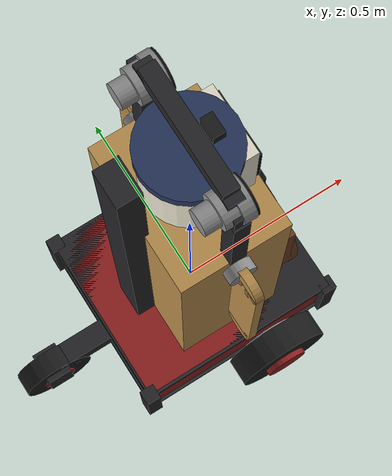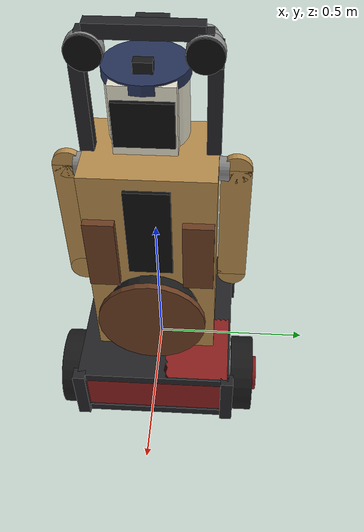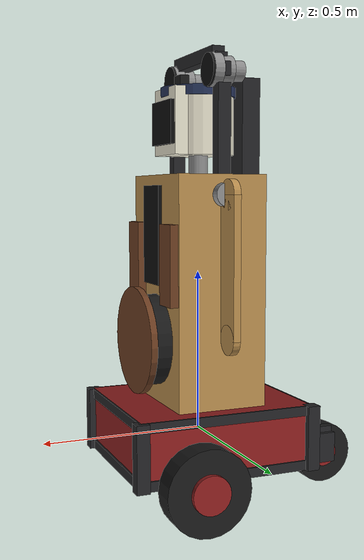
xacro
<?xml version="1.0"?>
<robot xmlns:xacro="http://www.ros.org/wiki/xacro" name="dadou_robot">

  <xacro:include filename="dadou_robot.urdf.xacro"/>

  <gazebo reference="body_leds_joint">
    <preserveFixedJoint>true</preserveFixedJoint>
  </gazebo>
  <gazebo reference="mouth_leds_joint">
    <preserveFixedJoint>true</preserveFixedJoint>
  </gazebo>
  <gazebo reference="left_eye_leds_joint">
    <preserveFixedJoint>true</preserveFixedJoint>
  </gazebo>
  <gazebo reference="right_eye_leds_joint">
    <preserveFixedJoint>true</preserveFixedJoint>
  </gazebo>

  <link name="camera_link">
    <visual>
      <geometry><box size="0.03 0.05 0.03"/></geometry>
      <material name="black"/>
    </visual>
    <xacro:box_inertial m="0.05" x="0.03" y="0.05" z="0.03"/>
  </link>
  <joint name="camera_joint" type="fixed">
    <parent link="head_link"/>
    <child link="camera_link"/>
    <origin xyz="${head_radius/2} 0 ${head_height + 0.025}"/>
  </joint>
  <gazebo reference="camera_joint">
    <preserveFixedJoint>true</preserveFixedJoint>
  </gazebo>

  <gazebo reference="camera_link">
    <sensor name="camera" type="camera">
      <camera>
        <horizontal_fov>1.047</horizontal_fov>
        <image>
          <width>640</width>
          <height>480</height>
          <format>R8G8B8</format>
        </image>
        <clip>
          <near>0.1</near>
          <far>100.0</far>
        </clip>
      </camera>
      <always_on>1</always_on>
      <update_rate>15</update_rate>
      <topic>camera/image_raw</topic>
    </sensor>
  </gazebo>

  <!-- Roue folle : elle est modélisée en sphère fixe, elle doit glisser. -->
  <gazebo reference="caster_rear_link">
    <mu1>0.05</mu1>
    <mu2>0.05</mu2>
  </gazebo>

  <!-- Pneus : bonne adhérence pour que le différentiel morde. -->
  <gazebo reference="wheel_left_link">
    <mu1>1.2</mu1>
    <mu2>1.0</mu2>
  </gazebo>
  <gazebo reference="wheel_right_link">
    <mu1>1.2</mu1>
    <mu2>1.0</mu2>
  </gazebo>

  <gazebo>
    <!-- Base différentielle : mêmes wheel_separation/wheel_radius que
         robot/move/diff_drive.py (propriétés xacro partagées). -->
    <plugin filename="gz-sim-diff-drive-system" name="gz::sim::systems::DiffDrive">
      <left_joint>wheel_left_joint</left_joint>
      <right_joint>wheel_right_joint</right_joint>
      <wheel_separation>${wheel_separation}</wheel_separation>
      <wheel_radius>${wheel_radius}</wheel_radius>
      <topic>/cmd_vel</topic>
      <odom_topic>/odom</odom_topic>
      <tf_topic>/tf_gz</tf_topic>
      <frame_id>odom</frame_id>
      <child_frame_id>base_link</child_frame_id>
      <odom_publish_frequency>30</odom_publish_frequency>
      <!-- Un robot de 50 kg au milieu d'acteurs n'accélère pas comme un jouet. -->
      <max_linear_acceleration>1.0</max_linear_acceleration>
      <max_angular_acceleration>2.0</max_angular_acceleration>
    </plugin>

    <plugin filename="gz-sim-joint-state-publisher-system" name="gz::sim::systems::JointStatePublisher">
      <topic>/joint_states</topic>
    </plugin>

    <!-- Servos : un contrôleur en position par joint, piloté en vitesse
         (use_velocity_commands : stable sans réglage de PID). -->
    <xacro:macro name="servo_controller" params="joint">
      <plugin filename="gz-sim-joint-position-controller-system" name="gz::sim::systems::JointPositionController">
        <joint_name>${joint}</joint_name>
        <topic>/${joint}/position</topic>
        <use_velocity_commands>true</use_velocity_commands>
      </plugin>
    </xacro:macro>
    <xacro:servo_controller joint="neck"/>
    <xacro:servo_controller joint="left_arm"/>
    <xacro:servo_controller joint="right_arm"/>
    <xacro:servo_controller joint="left_eye"/>
    <xacro:servo_controller joint="right_eye"/>
  </gazebo>

</robot>

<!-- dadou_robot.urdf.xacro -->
<robot xmlns:xacro="http://www.ros.org/wiki/xacro" name="dadou_robot">

  <!-- ======== Dimensions (mètres, kilogrammes) ======== -->
  <!-- GELÉ : base et roues alimentent la physique validée. Ne pas retoucher sans
       repasser le protocole caméra / la validation sim du suivi de personne. -->
  <xacro:property name="base_length" value="0.55"/>
  <xacro:property name="base_width" value="0.55"/>
  <xacro:property name="base_height" value="0.20"/>
  <xacro:property name="base_mass" value="35.0"/>
  <xacro:property name="base_vis_width" value="0.48"/>
  <xacro:property name="base_post" value="0.04"/>

  <xacro:property name="wheel_radius" value="0.13"/>
  <xacro:property name="wheel_width" value="0.075"/>
  <xacro:property name="wheel_separation" value="0.58"/>
  <xacro:property name="wheel_mass" value="1.5"/>

  <!-- Roue folle arrière sur flèche déportée -->
  <xacro:property name="caster_offset_x" value="-0.45"/>
  <xacro:property name="caster_radius" value="0.10"/>
  <xacro:property name="caster_width" value="0.06"/>

  <!-- Torse : colonne de planches, PLUS LARGE (y) QUE PROFONDE (x) — c'est net
       sur les photos de face vs de profil. -->
  <xacro:property name="torso_length" value="0.28"/>
  <xacro:property name="torso_width" value="0.38"/>
  <xacro:property name="torso_height" value="0.70"/>
  <xacro:property name="torso_mass" value="10.0"/>

  <!-- Tête = tambour clair sur l'arbre du cou (axe vertical) -->
  <xacro:property name="head_radius" value="0.11"/>
  <xacro:property name="head_height" value="0.20"/>
  <xacro:property name="head_mass" value="1.5"/>
  <!-- Façade plane du tambour (le vrai est un prisme hexagonal) : elle sert
       d'assise à la matrice LED du visage. -->
  <xacro:property name="head_face_width" value="0.17"/>
  <xacro:property name="head_face_depth" value="0.06"/>
  <!-- Arbre/roulement visible entre le haut du torse et le tambour (cf. mouth.jpg) -->
  <xacro:property name="neck_shaft_height" value="0.06"/>

  <!-- Bras : PALES DE BOIS PLATES (pas des tiges), pivotant aux épaules -->
  <xacro:property name="arm_length" value="0.42"/>
  <xacro:property name="arm_width" value="0.09"/>
  <xacro:property name="arm_thickness" value="0.022"/>
  <xacro:property name="arm_mass" value="0.8"/>

  <!-- Yeux : cloches (phares) au bout de l'arche. Le "rayon" sert d'échelle
       générale de la cloche ; l'inertie reste celle d'une sphère équivalente. -->
  <xacro:property name="eye_radius" value="0.05"/>
  <xacro:property name="eye_mass" value="0.12"/>
  <xacro:property name="eye_offset_y" value="0.15"/>
  <xacro:property name="eye_offset_z" value="0.30"/>

  <!-- Arche d'acier noir enjambant la tête, du haut du torse aux servos des yeux -->
  <xacro:property name="arch_section" value="0.04"/>
  <xacro:property name="arch_y" value="${torso_width/2 - 0.015}"/>

  <!-- Haut-parleur rond de la poitrine (la bouche SONORE, pas les LED) -->
  <xacro:property name="speaker_radius" value="0.14"/>
  <xacro:property name="speaker_z" value="${0.28*torso_height}"/>

  <!-- Grilles à lamelles ("ouïes") de part et d'autre du ruban LED -->
  <xacro:property name="gill_y" value="0.14"/>
  <xacro:property name="gill_z" value="${0.62*torso_height}"/>

  <!-- Ruban LED "corps" (zone 513-673) : bande verticale au CENTRE de la
       poitrine, entre les deux ouïes et au-dessus du haut-parleur. -->
  <xacro:property name="body_leds_height" value="0.30"/>
  <xacro:property name="body_leds_width" value="0.13"/>
  <xacro:property name="body_leds_thickness" value="0.012"/>
  <xacro:property name="body_leds_mass" value="0.05"/>
  <xacro:property name="body_leds_z" value="${0.74*torso_height}"/>

  <!-- Matrice LED "bouche" (LED 0-384) : plaque de façade de la TÊTE. Elle tourne
       donc avec le cou, comme sur le vrai robot. -->
  <xacro:property name="mouth_leds_width" value="0.16"/>
  <xacro:property name="mouth_leds_height" value="0.13"/>
  <xacro:property name="mouth_leds_thickness" value="0.012"/>
  <xacro:property name="mouth_leds_mass" value="0.05"/>

  <!-- Matrices LED des yeux (8x8) : disque en face avant de chaque cloche. -->
  <xacro:property name="eye_leds_radius" value="0.048"/>
  <xacro:property name="eye_leds_thickness" value="0.008"/>
  <xacro:property name="eye_leds_mass" value="0.02"/>

  <!-- Course des servos : 0..180° matériel, centrée dans le modèle -->
  <xacro:property name="servo_lower" value="${-pi/2}"/>
  <xacro:property name="servo_upper" value="${pi/2}"/>

  <material name="wood"><color rgba="0.72 0.55 0.30 1"/></material>
  <material name="wood_dark"><color rgba="0.42 0.24 0.13 1"/></material>
  <material name="red_metal"><color rgba="0.55 0.12 0.12 1"/></material>
  <material name="black"><color rgba="0.10 0.10 0.10 1"/></material>
  <material name="steel_black"><color rgba="0.14 0.14 0.15 1"/></material>
  <material name="grey"><color rgba="0.55 0.55 0.55 1"/></material>
  <material name="cream"><color rgba="0.90 0.88 0.80 1"/></material>
  <material name="blue_drum"><color rgba="0.15 0.20 0.35 1"/></material>
  <!-- LED éteintes par défaut (couleur réelle pilotée en runtime par leds_sim_node
       en sim, via matériaux émissifs gz ; sur le vrai robot ce sont des NeoPixel). -->
  <material name="leds_off"><color rgba="0.05 0.05 0.05 1"/></material>

  <!-- ======== Macros d'inertie ======== -->
  <xacro:macro name="box_inertial" params="m x y z">
    <inertial>
      <mass value="${m}"/>
      <inertia ixx="${m*(y*y+z*z)/12}" iyy="${m*(x*x+z*z)/12}" izz="${m*(x*x+y*y)/12}"
               ixy="0" ixz="0" iyz="0"/>
    </inertial>
  </xacro:macro>

  <xacro:macro name="cylinder_inertial" params="m r h">
    <inertial>
      <mass value="${m}"/>
      <inertia ixx="${m*(3*r*r+h*h)/12}" iyy="${m*(3*r*r+h*h)/12}" izz="${m*r*r/2}"
               ixy="0" ixz="0" iyz="0"/>
    </inertial>
  </xacro:macro>

  <xacro:macro name="sphere_inertial" params="m r">
    <inertial>
      <mass value="${m}"/>
      <inertia ixx="${2*m*r*r/5}" iyy="${2*m*r*r/5}" izz="${2*m*r*r/5}"
               ixy="0" ixz="0" iyz="0"/>
    </inertial>
  </xacro:macro>

  <link name="base_link">
    <!-- Caisse rouge (tôle larmée) -->
    <visual>
      <geometry><box size="${base_length} ${base_vis_width} ${base_height}"/></geometry>
      <material name="red_metal"/>
    </visual>
    <!-- Cornières d'acier noir en haut et en bas de la caisse : c'est ce liseré
         sombre qui donne à la base sa lecture "caisse cerclée" sur les photos. -->
    <visual>
      <origin xyz="0 0 ${base_height/2 - 0.015}"/>
      <geometry><box size="${base_length+0.012} ${base_vis_width+0.012} 0.03"/></geometry>
      <material name="steel_black"/>
    </visual>
    <visual>
      <origin xyz="0 0 ${-base_height/2 + 0.015}"/>
      <geometry><box size="${base_length+0.012} ${base_vis_width+0.012} 0.03"/></geometry>
      <material name="steel_black"/>
    </visual>
    <!-- Montants d'angle (les 4 arêtes verticales noires) -->
    <xacro:macro name="base_corner" params="x_sign y_sign">
      <visual>
        <origin xyz="${x_sign*base_length/2} ${y_sign*base_vis_width/2} 0"/>
        <geometry><box size="${base_post} ${base_post} ${base_height}"/></geometry>
        <material name="steel_black"/>
      </visual>
    </xacro:macro>
    <xacro:base_corner x_sign="1" y_sign="1"/>
    <xacro:base_corner x_sign="1" y_sign="-1"/>
    <xacro:base_corner x_sign="-1" y_sign="1"/>
    <xacro:base_corner x_sign="-1" y_sign="-1"/>
    <!-- Flèche arrière (tube carré) qui porte la roue folle : très visible sur
         les photos, c'est elle qui donne la silhouette "tricycle" du robot. -->
    <visual>
      <origin xyz="${(caster_offset_x - base_length/2)/2} 0 ${-base_height/2 + 0.03}"/>
      <geometry><box size="${-caster_offset_x - base_length/2 + 0.06} 0.06 0.06"/></geometry>
      <material name="steel_black"/>
    </visual>
    <!-- Chape (fourche) de la roue folle, entre la flèche et l'axe de la roue -->
    <visual>
      <origin xyz="${caster_offset_x} 0 ${-base_height/2 - 0.01}"/>
      <geometry><box size="0.07 0.09 0.10"/></geometry>
      <material name="steel_black"/>
    </visual>

    <collision>
      <geometry><box size="${base_length} ${base_width} ${base_height}"/></geometry>
    </collision>
    <xacro:box_inertial m="${base_mass}" x="${base_length}" y="${base_width}" z="${base_height}"/>
  </link>

  <!-- Roues motrices : pneu cranelé + jante. La collision reste le cylindre nu. -->
  <xacro:macro name="drive_wheel" params="side y_sign">
    <link name="wheel_${side}_link">
      <visual>
        <origin rpy="${pi/2} 0 0"/>
        <geometry><cylinder radius="${wheel_radius}" length="${wheel_width}"/></geometry>
        <material name="black"/>
      </visual>
      <!-- Jante rouge, débordant légèrement du flanc extérieur (cf. photos) -->
      <visual>
        <origin xyz="0 ${y_sign*0.01} 0" rpy="${pi/2} 0 0"/>
        <geometry><cylinder radius="${0.45*wheel_radius}" length="${wheel_width + 0.01}"/></geometry>
        <material name="red_metal"/>
      </visual>
      <!-- Couronne/pignon de chaîne côté intérieur : l'entraînement par chaîne est
           une signature visuelle de Didier. -->
      <visual>
        <origin xyz="0 ${-y_sign*(wheel_width/2 + 0.005)} 0" rpy="${pi/2} 0 0"/>
        <geometry><cylinder radius="${0.62*wheel_radius}" length="0.012"/></geometry>
        <material name="grey"/>
      </visual>
      <collision>
        <origin rpy="${pi/2} 0 0"/>
        <geometry><cylinder radius="${wheel_radius}" length="${wheel_width}"/></geometry>
      </collision>
      <xacro:cylinder_inertial m="${wheel_mass}" r="${wheel_radius}" h="${wheel_width}"/>
    </link>
    <joint name="wheel_${side}_joint" type="continuous">
      <parent link="base_link"/>
      <child link="wheel_${side}_link"/>
      <origin xyz="0.1 ${y_sign*wheel_separation/2} ${-base_height/2}"/>
      <axis xyz="0 1 0"/>
    </joint>
  </xacro:macro>
  <xacro:drive_wheel side="left" y_sign="1"/>
  <xacro:drive_wheel side="right" y_sign="-1"/>

  <link name="caster_rear_link">
    <visual>
      <origin rpy="${pi/2} 0 0"/>
      <geometry><cylinder radius="${caster_radius}" length="${caster_width}"/></geometry>
      <material name="black"/>
    </visual>
    <visual>
      <origin rpy="${pi/2} 0 0"/>
      <geometry><cylinder radius="${0.45*caster_radius}" length="${caster_width + 0.012}"/></geometry>
      <material name="red_metal"/>
    </visual>
    <collision>
      <geometry><sphere radius="${caster_radius}"/></geometry>
    </collision>
    <xacro:sphere_inertial m="1.0" r="${caster_radius}"/>
  </link>
  <joint name="caster_rear_joint" type="fixed">
    <parent link="base_link"/>
    <child link="caster_rear_link"/>
    <origin xyz="${caster_offset_x} 0 ${-base_height/2 - wheel_radius + caster_radius}"/>
  </joint>

  <!-- ======== Torse : colonne de planches + façade sonore + mât + arche ======== -->
  <link name="torso_link">
    <!-- Caisse de planches -->
    <visual>
      <origin xyz="0 0 ${torso_height/2}"/>
      <geometry><box size="${torso_length} ${torso_width} ${torso_height}"/></geometry>
      <material name="wood"/>
    </visual>

    <!-- Haut-parleur rond de la poitrine : pavillon noir + couronne de bois
         vernie. C'est la "bouche" SONORE (le HP), à ne pas confondre avec la
         matrice LED bouche, qui est sur la tête. -->
    <visual>
      <origin xyz="${torso_length/2 + 0.02} 0 ${speaker_z}" rpy="0 ${pi/2} 0"/>
      <geometry><cylinder radius="${speaker_radius}" length="0.08"/></geometry>
      <material name="black"/>
    </visual>
    <visual>
      <origin xyz="${torso_length/2 + 0.065} 0 ${speaker_z}" rpy="0 ${pi/2} 0"/>
      <geometry><cylinder radius="${speaker_radius + 0.025}" length="0.02"/></geometry>
      <material name="wood_dark"/>
    </visual>

    <!-- Ouïes (grilles à lamelles) de part et d'autre du ruban LED -->
    <xacro:macro name="gill" params="y_sign">
      <visual>
        <origin xyz="${torso_length/2 + 0.01} ${y_sign*gill_y} ${gill_z}"/>
        <geometry><box size="0.03 0.09 0.24"/></geometry>
        <material name="wood_dark"/>
      </visual>
    </xacro:macro>
    <xacro:gill y_sign="1"/>
    <xacro:gill y_sign="-1"/>

    <!-- Mât d'acier noir à l'arrière : il monte au-dessus du torse et porte l'arche -->
    <visual>
      <origin xyz="${-torso_length/2 - 0.02} 0 ${(torso_height + eye_offset_z)/2}"/>
      <geometry><box size="0.06 0.09 ${torso_height + eye_offset_z}"/></geometry>
      <material name="steel_black"/>
    </visual>

    <!-- Bossages d'épaule (paliers des servos de bras) -->
    <xacro:macro name="shoulder_boss" params="y_sign">
      <visual>
        <origin xyz="0 ${y_sign*(torso_width/2 + 0.015)} ${torso_height - 0.06}" rpy="${pi/2} 0 0"/>
        <geometry><cylinder radius="0.035" length="0.03"/></geometry>
        <material name="grey"/>
      </visual>
    </xacro:macro>
    <xacro:shoulder_boss y_sign="1"/>
    <xacro:shoulder_boss y_sign="-1"/>

    <!-- Arbre / roulement du cou, visible entre le torse et le tambour -->
    <visual>
      <origin xyz="0 0 ${torso_height + neck_shaft_height/2}"/>
      <geometry><cylinder radius="0.03" length="${neck_shaft_height}"/></geometry>
      <material name="grey"/>
    </visual>

    <xacro:macro name="arch_post" params="y_sign">
      <!-- montant -->
      <visual>
        <origin xyz="0 ${y_sign*arch_y} ${torso_height + eye_offset_z/2 - 0.02}"/>
        <geometry><box size="${arch_section} ${arch_section} ${eye_offset_z - 0.04}"/></geometry>
        <material name="steel_black"/>
      </visual>
      <!-- coude rentrant vers le servo de l'œil -->
      <visual>
        <origin xyz="0 ${y_sign*(arch_y + eye_offset_y)/2} ${torso_height + eye_offset_z}"/>
        <geometry><box size="${arch_section} ${arch_y - eye_offset_y + arch_section} ${arch_section}"/></geometry>
        <material name="steel_black"/>
      </visual>
    </xacro:macro>
    <xacro:arch_post y_sign="1"/>
    <xacro:arch_post y_sign="-1"/>
    <!-- Traverse au-dessus de la tête, reliant les deux extrémités de l'arche -->
    <visual>
      <origin xyz="0 0 ${torso_height + eye_offset_z + 0.05}"/>
      <geometry><box size="${arch_section} ${2*eye_offset_y} ${arch_section}"/></geometry>
      <material name="steel_black"/>
    </visual>
    <!-- Jambages reliant la traverse aux extrémités (l'arche est un cintre) -->
    <xacro:macro name="arch_riser" params="y_sign">
      <visual>
        <origin xyz="0 ${y_sign*eye_offset_y} ${torso_height + eye_offset_z + 0.025}"/>
        <geometry><box size="${arch_section} ${arch_section} 0.05"/></geometry>
        <material name="steel_black"/>
      </visual>
    </xacro:macro>
    <xacro:arch_riser y_sign="1"/>
    <xacro:arch_riser y_sign="-1"/>

    <collision>
      <origin xyz="0 0 ${torso_height/2}"/>
      <geometry><box size="${torso_length} ${torso_width} ${torso_height}"/></geometry>
    </collision>
    <xacro:box_inertial m="${torso_mass}" x="${torso_length}" y="${torso_width}" z="${torso_height}"/>
  </link>
  <joint name="torso_joint" type="fixed">
    <parent link="base_link"/>
    <child link="torso_link"/>
    <origin xyz="0 0 ${base_height/2}"/>
  </joint>

  <!-- ======== Tête : tambour clair (servo neck, rotation panoramique) ======== -->
  <link name="head_link">
    <visual>
      <origin xyz="0 0 ${head_height/2}"/>
      <geometry><cylinder radius="${head_radius}" length="${head_height}"/></geometry>
      <material name="cream"/>
    </visual>
    <visual>
      <origin xyz="${head_radius - head_face_depth/2} 0 ${head_height/2}"/>
      <geometry><box size="${head_face_depth} ${head_face_width} ${head_height}"/></geometry>
      <material name="cream"/>
    </visual>
    <!-- Chapeau bleu foncé du tambour (cf. mouth.jpg) -->
    <visual>
      <origin xyz="0 0 ${head_height - 0.01}"/>
      <geometry><cylinder radius="${head_radius + 0.005}" length="0.03"/></geometry>
      <material name="blue_drum"/>
    </visual>
    <collision>
      <origin xyz="0 0 ${head_height/2}"/>
      <geometry><cylinder radius="${head_radius}" length="${head_height}"/></geometry>
    </collision>
    <xacro:cylinder_inertial m="${head_mass}" r="${head_radius}" h="${head_height}"/>
  </link>
  <joint name="neck" type="revolute">
    <parent link="torso_link"/>
    <child link="head_link"/>
    <origin xyz="0 0 ${torso_height + neck_shaft_height}"/>
    <axis xyz="0 0 1"/>
    <limit lower="${servo_lower}" upper="${servo_upper}" effort="2.0" velocity="3.0"/>
  </joint>

  <!-- ======== Bras : pales de bois plates pivotant aux épaules ======== -->
  <xacro:macro name="arm" params="side y_sign">
    <link name="${side}_arm_link">
      <visual>
        <origin xyz="0 0 ${-arm_length/2}"/>
        <geometry><box size="${arm_thickness} ${arm_width} ${arm_length}"/></geometry>
        <material name="wood"/>
      </visual>
      <!-- Bout arrondi de la pale -->
      <visual>
        <origin xyz="0 0 ${-arm_length}" rpy="0 ${pi/2} 0"/>
        <geometry><cylinder radius="${arm_width/2}" length="${arm_thickness}"/></geometry>
        <material name="wood"/>
      </visual>
      <!-- Épaulement arrondi côté pivot -->
      <visual>
        <origin rpy="0 ${pi/2} 0"/>
        <geometry><cylinder radius="${arm_width/2}" length="${arm_thickness}"/></geometry>
        <material name="wood"/>
      </visual>
      <collision>
        <origin xyz="0 0 ${-arm_length/2}"/>
        <geometry><box size="${arm_thickness} ${arm_width} ${arm_length}"/></geometry>
      </collision>
      <xacro:box_inertial m="${arm_mass}" x="${arm_thickness}" y="${arm_width}" z="${arm_length}"/>
    </link>
    <joint name="${side}_arm" type="revolute">
      <parent link="torso_link"/>
      <child link="${side}_arm_link"/>
      <!-- Épaule posée juste EN DEHORS du flanc : la pale pend le long du torse
           sans le traverser (sa largeur est maintenant dans l'axe y). -->
      <origin xyz="0 ${y_sign*(torso_width/2 + arm_width/2 + 0.005)} ${torso_height - 0.06}"/>
      <axis xyz="0 1 0"/>
      <limit lower="${servo_lower}" upper="${servo_upper}" effort="2.0" velocity="3.0"/>
    </joint>
  </xacro:macro>
  <xacro:arm side="left" y_sign="1"/>
  <xacro:arm side="right" y_sign="-1"/>

  <xacro:macro name="eye" params="side y_sign">
    <link name="${side}_eye_link">
      <!-- culot -->
      <visual>
        <origin xyz="-0.055 0 0" rpy="0 ${pi/2} 0"/>
        <geometry><cylinder radius="0.030" length="0.04"/></geometry>
        <material name="grey"/>
      </visual>
      <!-- corps de la cloche (évasement) -->
      <visual>
        <origin xyz="-0.017 0 0" rpy="0 ${pi/2} 0"/>
        <geometry><cylinder radius="0.042" length="0.04"/></geometry>
        <material name="grey"/>
      </visual>
      <!-- collerette avant -->
      <visual>
        <origin xyz="0.015 0 0" rpy="0 ${pi/2} 0"/>
        <geometry><cylinder radius="${eye_radius}" length="0.03"/></geometry>
        <material name="grey"/>
      </visual>
      <collision>
        <geometry><sphere radius="${eye_radius}"/></geometry>
      </collision>
      <xacro:sphere_inertial m="${eye_mass}" r="${eye_radius}"/>
    </link>
    <joint name="${side}_eye" type="revolute">
      <parent link="torso_link"/>
      <child link="${side}_eye_link"/>
      <origin xyz="0 ${y_sign*eye_offset_y} ${torso_height + eye_offset_z}"/>
      <axis xyz="0 1 0"/>
      <limit lower="${servo_lower}" upper="${servo_upper}" effort="0.5" velocity="5.0"/>
    </joint>
  </xacro:macro>
  <xacro:eye side="left" y_sign="1"/>
  <xacro:eye side="right" y_sign="-1"/>

  <!-- Ruban "corps" (513-673) : bande verticale au centre de la poitrine. -->
  <link name="body_leds_link">
    <visual>
      <geometry><box size="${body_leds_thickness} ${body_leds_width} ${body_leds_height}"/></geometry>
      <material name="leds_off"/>
    </visual>
    <xacro:box_inertial m="${body_leds_mass}" x="${body_leds_thickness}" y="${body_leds_width}" z="${body_leds_height}"/>
  </link>
  <joint name="body_leds_joint" type="fixed">
    <parent link="torso_link"/>
    <child link="body_leds_link"/>
    <origin xyz="${torso_length/2 + body_leds_thickness/2 + 0.005} 0 ${body_leds_z}"/>
  </joint>

  <link name="mouth_leds_link">
    <visual>
      <geometry><box size="${mouth_leds_thickness} ${mouth_leds_width} ${mouth_leds_height}"/></geometry>
      <material name="leds_off"/>
    </visual>
    <xacro:box_inertial m="${mouth_leds_mass}" x="${mouth_leds_thickness}" y="${mouth_leds_width}" z="${mouth_leds_height}"/>
  </link>
  <joint name="mouth_leds_joint" type="fixed">
    <parent link="head_link"/>
    <child link="mouth_leds_link"/>
    <!-- Plaquée SUR la façade plane de la tête (et non enfoncée dans le tambour). -->
    <origin xyz="${head_radius + mouth_leds_thickness/2} 0 ${0.48*head_height}"/>
  </joint>

  <!-- Matrices des yeux (384-447 droit, 448-511 gauche) : disque lumineux en face
       avant de chaque cloche, solidaire du servo de l'œil. -->
  <xacro:macro name="eye_leds" params="side">
    <link name="${side}_eye_leds_link">
      <visual>
        <origin rpy="0 ${pi/2} 0"/>
        <geometry><cylinder radius="${eye_leds_radius}" length="${eye_leds_thickness}"/></geometry>
        <material name="leds_off"/>
      </visual>
      <xacro:cylinder_inertial m="${eye_leds_mass}" r="${eye_leds_radius}" h="${eye_leds_thickness}"/>
    </link>
    <joint name="${side}_eye_leds_joint" type="fixed">
      <parent link="${side}_eye_link"/>
      <child link="${side}_eye_leds_link"/>
      <origin xyz="0.032 0 0"/>
    </joint>
  </xacro:macro>
  <xacro:eye_leds side="left"/>
  <xacro:eye_leds side="right"/>

</robot>
